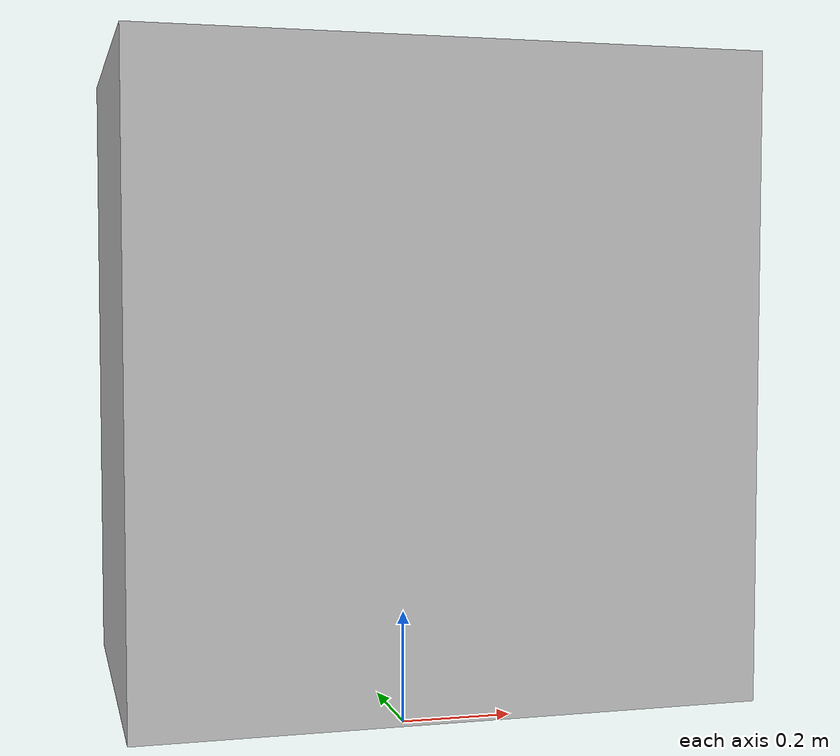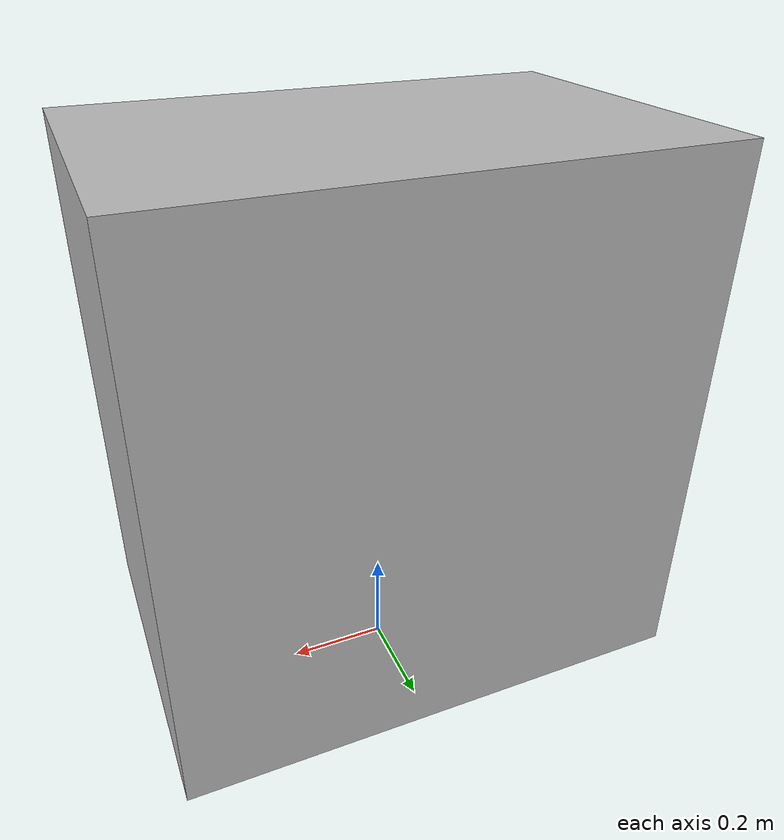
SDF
<?xml version="1.0" ?>
<sdf version="1.5">
  <model name="big_box3">
    <pose>0 0 0.625  0 0 0</pose>
    <static>false</static>
    <link name="link">
      <inertial>
        <mass>40.0</mass>
        <inertia>
          <ixx>1</ixx>
          <ixy>0</ixy>
          <ixz>0</ixz>
          <iyy>1</iyy>
          <iyz>0</iyz>
          <izz>1</izz>
        </inertia>
      </inertial>

      <collision name="collision">
        <geometry>
          <box>
              <size>1.20 0.80 1.25</size>
          </box>
        </geometry>
        <surface>
          <contact>
            <ode>
              <max_vel>0.1</max_vel>
              <min_depth>0.001</min_depth>
            </ode>
          </contact>
        </surface>
      </collision>
      <visual name="visual">
        <geometry>
          <mesh>
            <uri>model://big_box3/meshes/big_box_1.dae</uri>
            <scale>0.85 0.85 0.85</scale>
          </mesh>
        </geometry>
      </visual>
    </link>

  </model>
</sdf>
